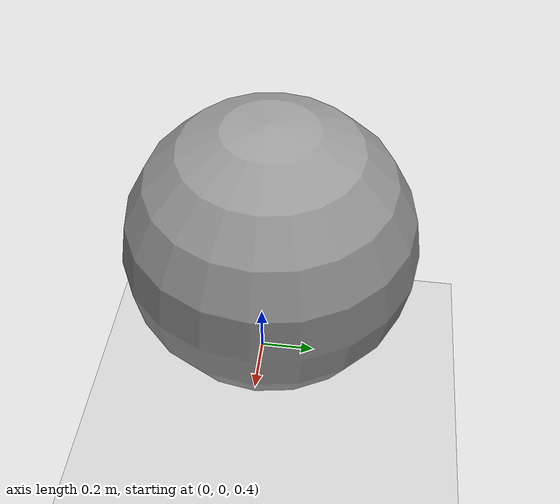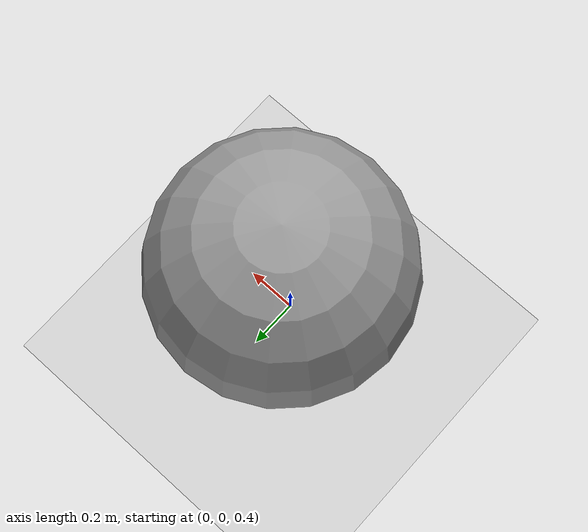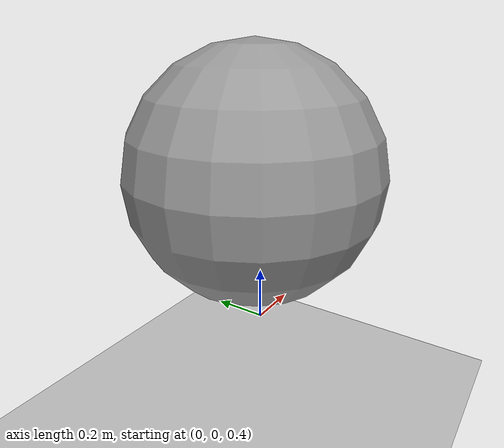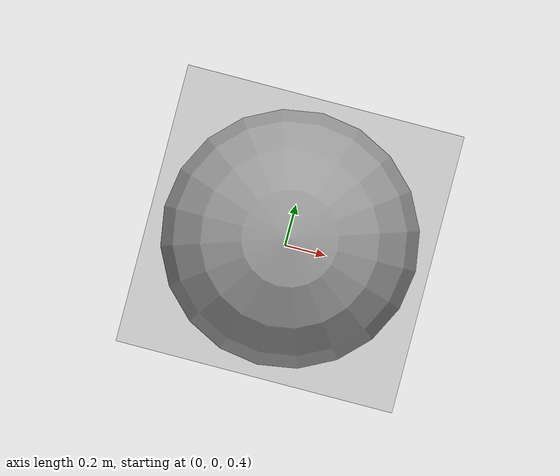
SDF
<?xml version="1.0" ?>
<sdf version="1.5">
  <world name="windy_static">
    <!-- A global light source -->
    <include>
      <uri>model://sun</uri>
    </include>
    <!-- A ground plane -->
    <include>
      <uri>model://ground_plane</uri>
    </include>
    <include>
      <uri>model://asphalt_plane</uri>
    </include>
    <plugin name='wind3d_plugin' filename='libgazebo_wind3d_plugin.so'>
      <publishRate>2.0</publishRate>
      <windVelocityMean>10.0</windVelocityMean>
      <windVelocityMax>10.0</windVelocityMax>
      <windVelocityVariance>1.0</windVelocityVariance>
      <windDirectionMean>0 1 0</windDirectionMean>
      <windDirectionVariance>0</windDirectionVariance>
      <windGustStart>0</windGustStart>
      <windGustDuration>0</windGustDuration>
      <windGustVelocityMean>0</windGustVelocityMean>
      <windGustVelocityMax>20.0</windGustVelocityMax>
      <windGustVelocityVariance>0</windGustVelocityVariance>
      <windGustDirectionMean>1 0 0</windGustDirectionMean>
      <windGustDirectionVariance>0</windGustDirectionVariance>
      <windPubTopic>world_wind</windPubTopic>
      <windServerRegisterLinkTopic>world_wind_register_link</windServerRegisterLinkTopic>
      <useCustomStaticWindField>false</useCustomStaticWindField>
   </plugin>
   <plugin name="ros_interface_plugin" filename="libgazebo_ros_interface_plugin.so">
     <robotNamespace></robotNamespace>
   </plugin>
    <physics name='default_physics' default='0' type='ode'>
      <gravity>0 0 -9.8066</gravity>
      <ode>
        <solver>
          <type>quick</type>
          <iters>10</iters>
          <sor>1.3</sor>
          <use_dynamic_moi_rescaling>0</use_dynamic_moi_rescaling>
        </solver>
        <constraints>
          <cfm>0</cfm>
          <erp>0.2</erp>
          <contact_max_correcting_vel>100</contact_max_correcting_vel>
          <contact_surface_layer>0.001</contact_surface_layer>
        </constraints>
      </ode>
      <max_step_size>0.004</max_step_size>
      <real_time_factor>1</real_time_factor>
      <real_time_update_rate>250</real_time_update_rate>
      <magnetic_field>6.0e-6 2.3e-5 -4.2e-5</magnetic_field>
    </physics>
    <model name='unit_sphere'>
      <pose>0.013103 0.035528 1 0 -0 0</pose>
      <link name='base_link2'>
        <inertial>
          <mass>0.1</mass>
          <inertia>
            <ixx>0.01</ixx>
            <ixy>0</ixy>
            <ixz>0</ixz>
            <iyy>0.01</iyy>
            <iyz>0</iyz>
            <izz>0.01</izz>
          </inertia>
          <pose>0 0 0 0 -0 0</pose>
        </inertial>
        <collision name='collision'>
          <geometry>
            <sphere>
              <radius>0.5</radius>
            </sphere>
          </geometry>
          <max_contacts>10</max_contacts>
          <surface>
            <contact>
              <ode/>
            </contact>
            <bounce/>
            <friction>
              <torsional>
                <ode/>
              </torsional>
              <ode/>
            </friction>
          </surface>
        </collision>
        <visual name='visual'>
          <geometry>
            <sphere>
              <radius>0.5</radius>
            </sphere>
          </geometry>
          <material>
            <script>
              <name>Gazebo/Grey</name>
              <uri>file://media/materials/scripts/gazebo.material</uri>
            </script>
          </material>
        </visual>
        <self_collide>0</self_collide>
        <enable_gravity>1</enable_gravity>
        <enable_wind>1</enable_wind>
        <wind>
          <x>10</x>
          <y>10</y>
          <z>10</z>
        </wind>
        <kinematic>0</kinematic>
      </link>
      <enable_wind>true</enable_wind>
      <static>false</static>
    </model>
    <plugin name="gymfc_plugin" filename="libFlightControllerPlugin.so">
      <connectionTimeoutMaxCount>5</connectionTimeoutMaxCount>
      <loopRate>1000.0</loopRate>
      <robotNamespace>gymfc</robotNamespace>
    </plugin>
  </world>
</sdf>
